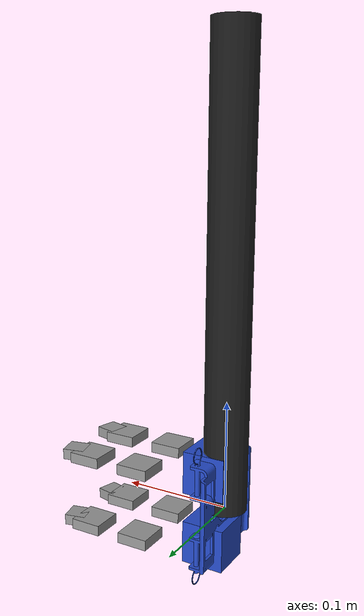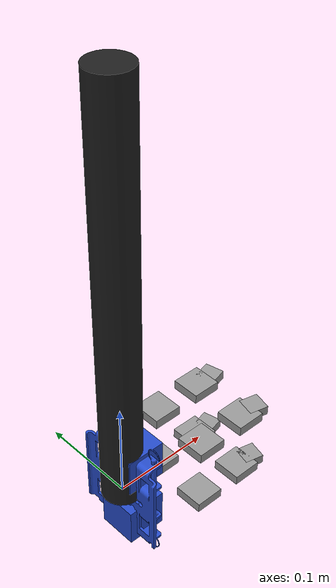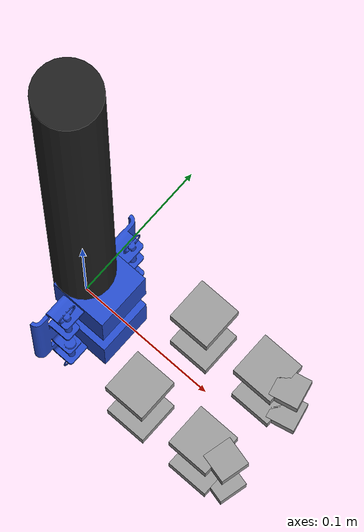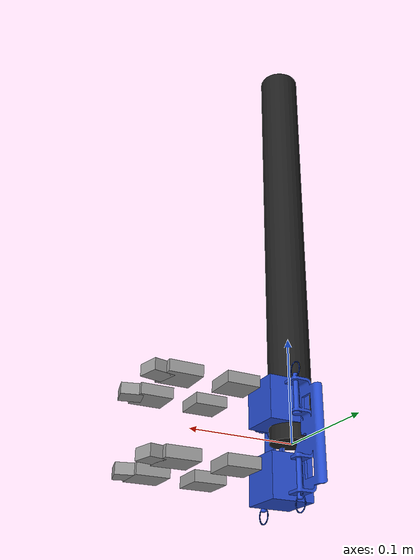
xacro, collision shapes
<?xml version="1.0" encoding="UTF-8"?>
<robot name="ezgripper_single_mount_instantiation" xmlns:xacro="http://ros.org/wiki/xacro">

    <xacro:property name="prefix" value="left" />
    <xacro:property name="ezgripper_offset_x" value="0.00"/>
    <xacro:property name="ezgripper_offset_y" value="0.0"/>
    <xacro:property name="ezgripper_offset_z" value="0.0"/>

    <xacro:include filename="ezgripper_double_with_mount.urdf.xacro" />

    <xacro:ezgripper_double_with_mount prefix="${prefix}" parent_link="base_link">
        <origin xyz="${ezgripper_offset_x} ${ezgripper_offset_y} ${ezgripper_offset_z}" rpy="0 0 0"/>
    </xacro:ezgripper_double_with_mount>

    <link name="world"/>

    <joint name="fixed" type="fixed">
        <parent link="world"/>
        <child link="base_link"/>
    </joint>

    <link name="base_link">
        <visual>
            <geometry>
                <cylinder length="0.42" radius="0.02"/>
            </geometry>
            <origin rpy="0 0 0" xyz="0 0 0.21"/>
            <material name="black"/>
        </visual>
        <collision>
            <geometry>
                <cylinder length="0.42" radius="0.02"/>
            </geometry>
            <origin rpy="0 0 0" xyz="0 0 0.21"/>
        </collision>
    </link>

    <gazebo>
        <plugin filename="libgz_ros2_control-system.so" name="gz_ros2_control::GazeboSimROS2ControlPlugin">
            <parameters>$(find ezgripper_control)/config/controllers_double.yaml</parameters>
        </plugin>
    </gazebo>

</robot>

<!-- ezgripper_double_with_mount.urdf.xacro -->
<robot name="ezgripper_double_with_mount" xmlns:xacro="http://ros.org/wiki/xacro">

  <xacro:macro name="ezgripper_double_with_mount" params="prefix parent_link *origin">

    <xacro:property name="gripper_spacing" value="0.068"/>  <!-- Gripper separation in meters -->
    <xacro:property name="gripper_offset" value="0.01254"/>   <!-- Gripper offset in the positive X direction from the mount in meters (single mount 16mm, double and triple mount 12.54mm-->

    <!-- Include the gripper and mount files -->
    <xacro:include filename="$(find ezgripper_description)/urdf/SAKE_double_mount.urdf.xacro" />
    <xacro:include filename="$(find ezgripper_description)/urdf/ezgripper_single.urdf.xacro" />

    <!-- Instantiate the double mount -->
    <xacro:SAKE_double_mount prefix="${prefix}" parent_link="${parent_link}">
      <xacro:insert_block name="origin"/>
    </xacro:SAKE_double_mount>

    <!-- Instantiate the first ezgripper_single -->
    <xacro:ezgripper_single prefix="${prefix}_gripper1" parent_link="${prefix}_ezgripper_to_mount">
      <origin xyz="${gripper_offset} 0 ${gripper_spacing/2.0}" rpy="0 0 0"/>
    </xacro:ezgripper_single>

    <!-- Instantiate the second ezgripper_single -->
    <xacro:ezgripper_single prefix="${prefix}_gripper2" parent_link="${prefix}_ezgripper_to_mount">
      <origin xyz="${gripper_offset} 0 -${gripper_spacing/2.0}" rpy="0 0 0"/>
    </xacro:ezgripper_single>

  </xacro:macro>

</robot>

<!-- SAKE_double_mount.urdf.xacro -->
<robot name="SAKE_double_mount" xmlns:xacro="http://ros.org/wiki/xacro">

	<xacro:macro name="SAKE_double_mount" params="prefix parent_link *origin">

		<!-- links -->

		<joint name="${prefix}_ezgripper_mount2base" type="fixed">
				<xacro:insert_block name="origin"/>
				<parent link="${parent_link}"/>
				<child link="${prefix}_ezgripper_to_mount"/>
				<axis xyz="0 0 0"/>
				<limit effort="0" lower="-1.57075" upper="0.25" velocity="3.67"/>
		</joint>

		<link name="${prefix}_ezgripper_to_mount">
			<visual>
				<origin rpy="0 0 0" xyz="0.0 0.0 0.0"/>
				<geometry>
					<mesh filename="file://$(find ezgripper_description)/meshes/visual/SAKE_Double_Mount.stl"/>
				</geometry>
				<material name="blue"/>
			</visual>
			<collision>
				<origin rpy="0 0 0" xyz="0.0 0.0 0.0"/>
				<geometry>
					<mesh filename="file://$(find ezgripper_description)/meshes/collision/SAKE_Double_Mount.stl"/>
				</geometry>
			</collision>
			<inertial>
				<mass value=".3"/>
				<inertia ixx="0.01" ixy="0.0" ixz="0.0" iyy="0.01" iyz="0.0" izz="0.01"/>
			</inertial>
		</link>

		<gazebo reference="${prefix}_ezgripper_mount">
			<material>Gazebo/Blue</material>
		</gazebo>

	</xacro:macro>

</robot>

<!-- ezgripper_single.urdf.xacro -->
<robot name="ezgripper_single" xmlns:xacro="http://ros.org/wiki/xacro">

    <!-- Include centralized material definitions (properties only) -->
    <xacro:include filename="$(find ezgripper_description)/urdf/materials.xacro" />

	<xacro:macro name="ezgripper_single" params="prefix parent_link *origin">

		<!-- links -->

		<xacro:ezgripper_palm prefix="${prefix}" parent_link="${parent_link}">
			<xacro:insert_block name="origin"/>
		</xacro:ezgripper_palm>

	</xacro:macro>

	<xacro:macro name="ezgripper_palm" params="prefix parent_link *origin">

        <joint name="${prefix}_ezgripper_to_parent" type="fixed">
   	    <xacro:insert_block name="origin"/>
            <parent link="${parent_link}"/>
            <child link="${prefix}_ezgripper_palm_link"/>
            <axis xyz="0 0 0"/>
            <limit effort="0" lower="-1.57075" upper="0.25" velocity="3.67"/>
        </joint>

		<link name="${prefix}_ezgripper_palm_link">
			<visual>
				<origin xyz="0.0 0 0" rpy="0 0 0"/>
				<geometry>
					<mesh filename="package://ezgripper_description/meshes/visual/SAKE_Palm_IM.stl"/>
				</geometry>
				<material name="ezgripper_blue"/>
			</visual>
			<collision>
				<origin xyz="0.0 0 0" rpy="0 0 0"/>
				<geometry>
					<box size="0.04 0.04 0.04"/>
				</geometry>
			</collision>
			<inertial>
				<mass value=".3"/>
				<inertia ixx="0.01" ixy="0.0" ixz="0.0" iyy="0.01" iyz="0.0" izz="0.01"/>
			</inertial>
		</link>

		<gazebo reference="${prefix}_ezgripper_palm_link">
			<material>Gazebo/Blue</material>
		</gazebo>

		<xacro:ezgripper_finger_L1 prefix="${prefix}" postfix="1" reflect="1" />
		<xacro:ezgripper_finger_L1 prefix="${prefix}" postfix="2" reflect="1" />

		<xacro:ezgripper_finger_L2 prefix="${prefix}" postfix="1" reflect="1" />
		<xacro:ezgripper_finger_L2 prefix="${prefix}" postfix="2" reflect="1" />

		<xacro:ezgripper_finger_pad prefix="${prefix}" postfix="1" reflect="1" />
		<xacro:ezgripper_finger_pad prefix="${prefix}" postfix="2" reflect="1" />

		<xacro:ezgripper_knuckle_palm_L1 prefix="${prefix}" postfix="1" reflectY="1" reflectZ="1" reflectR="-1" mimic_test="false"/>
		<xacro:ezgripper_knuckle_palm_L1 prefix="${prefix}" postfix="2" reflectY="-1" reflectZ="1" reflectR="1" mimic_test="true"/>

		<xacro:ezgripper_knuckle_L1_L2 prefix="${prefix}" postfix="1" reflectY="1" reflectZ="1" reflectR="-1"/>
		<xacro:ezgripper_knuckle_L1_L2 prefix="${prefix}" postfix="2" reflectY="-1" reflectZ="1" reflectR="1"/>

		<xacro:ezgripper_joint_finger_pad prefix="${prefix}" postfix="1" reflectY="1" reflectZ="1" reflectR="1"/>
		<xacro:ezgripper_joint_finger_pad prefix="${prefix}" postfix="2" reflectY="-1" reflectZ="1" reflectR="-1"/>

		<!-- Transmission needs to be removed when mimicked -->
		<xacro:ezgripper_knuckle_palm_trans prefix="${prefix}" postfix="L1_1"/>

		<xacro:gazebo_knuckle_jsp prefix="${prefix}" />

	</xacro:macro>

	<xacro:macro name="ezgripper_finger_L1" params="prefix postfix reflect">

		<link name="${prefix}_ezgripper_finger_L1_${postfix}">
			<visual>
				<origin xyz="0 0 0" rpy="0 0 0"/>
				<geometry>
					<mesh filename="package://ezgripper_description/meshes/visual/SAKE_Finger_L1_IM.stl"/>
				</geometry>
				<material name="ezgripper_grey"/>
			</visual>
			<collision>
				<origin xyz="0 0 0" rpy="0 0 0"/>
				<geometry>
					<box size="0.03 0.01 0.03"/>
				</geometry>
			</collision>
			<inertial>
				<mass value=".025"/>
				<inertia ixx="0.01" ixy="0.0" ixz="0.0" iyy="0.01" iyz="0.0" izz="0.01"/>
			</inertial>
		</link>

		<gazebo reference="${prefix}_ezgripper_finger_L1_${postfix}">
			<material>Gazebo/Grey</material>
		</gazebo>

	</xacro:macro>

	<xacro:macro name="ezgripper_finger_L2" params="prefix postfix reflect">

		<link name="${prefix}_ezgripper_finger_L2_${postfix}">
			<visual>
				<origin xyz="0 0 0" rpy="0 0 0"/>
				<geometry>
					<mesh filename="package://ezgripper_description/meshes/visual/SAKE_Finger_L2_IM.stl"/>
				</geometry>
				<material name="ezgripper_grey"/>
			</visual>
			<collision>
				<origin xyz="0 0 0" rpy="0 0 0"/>
				<geometry>
					<box size="0.03 0.01 0.03"/>
				</geometry>
			</collision>
			<inertial>
				<mass value=".025"/>
				<inertia ixx="0.01" ixy="0.0" ixz="0.0" iyy="0.01" iyz="0.0" izz="0.01"/>
			</inertial>
		</link>

		<gazebo reference="${prefix}_ezgripper_finger_L2_${postfix}">
			<material>Gazebo/Grey</material>
		</gazebo>

	</xacro:macro>

	<xacro:macro name="ezgripper_finger_pad" params="prefix postfix reflect">

		<link name="${prefix}_ezgripper_finger_pad_${postfix}">
			<visual>
				<origin xyz="0 0 0" rpy="0 0 0"/>
				<geometry>
					<mesh filename="package://ezgripper_description/meshes/visual/SAKE_Finger_Pad_IM.stl"/>
				</geometry>
				<material name="ezgripper_grey"/>
			</visual>
			<collision>
				<origin xyz="0 0 0" rpy="0 0 0"/>
				<geometry>
					<box size="0.02 0.01 0.02"/>
				</geometry>
			</collision>
			<inertial>
				<mass value=".025"/>
				<inertia ixx="0.01" ixy="0.0" ixz="0.0" iyy="0.01" iyz="0.0" izz="0.01"/>
			</inertial>
		</link>

		<gazebo reference="${prefix}_ezgripper_finger_pad_${postfix}">
			<material>Gazebo/Grey</material>
		</gazebo>

	</xacro:macro>

	<!-- Joints -->

	<xacro:macro name="ezgripper_knuckle_palm_L1" params="prefix postfix reflectY reflectZ reflectR mimic_test">
		<joint name="${prefix}_ezgripper_knuckle_palm_L1_${postfix}" type="revolute">
			<parent link="${prefix}_ezgripper_palm_link"/>
			<child link="${prefix}_ezgripper_finger_L1_${postfix}"/>
			<origin xyz="0.0595 ${reflectY*0.03} 0" rpy="${1.5708 * reflectR} 0 0"/>
			<axis xyz="0 1 0"/>
			<limit lower="-1.57075" upper="0.27" effort="1" velocity="3.67"/>
			<xacro:if value="${mimic_test}">
					<mimic joint="${prefix}_ezgripper_knuckle_palm_L1_1"/>
			</xacro:if>
		</joint>
	</xacro:macro>

	<xacro:macro name="ezgripper_knuckle_L1_L2" params="prefix postfix reflectY reflectZ reflectR">
		<joint name="${prefix}_ezgripper_knuckle_L1_L2_${postfix}" type="fixed">
			<parent link="${prefix}_ezgripper_finger_L1_${postfix}"/>
			<child link="${prefix}_ezgripper_finger_L2_${postfix}"/>
			<origin xyz="0.052 0 0" rpy="0 0 0"/>
			<axis xyz="0 1 0"/>
		</joint>
	</xacro:macro>

	<xacro:macro name="ezgripper_joint_finger_pad" params="prefix postfix reflectY reflectZ reflectR">
		<joint name="${prefix}_ezgripper_joint_finger_pad${postfix}" type="fixed">
			<parent link="${prefix}_ezgripper_finger_L2_${postfix}"/>
			<child link="${prefix}_ezgripper_finger_pad_${postfix}"/>
			<origin xyz="0.01849 0 0" rpy="0 -0.2318 0"/>
			<axis xyz="0 1 0"/>
		</joint>
	</xacro:macro>

	<!-- Transmissions for Gazebo -->

	<xacro:macro name="ezgripper_knuckle_palm_trans" params="prefix postfix">
		<transmission name="${prefix}_ezgripper_knuckle_palm_trans_${postfix}">
				<type>transmission_interface/SimpleTransmission</type>
				<joint name="${prefix}_ezgripper_knuckle_palm_${postfix}">
					<hardwareInterface>hardware_interface/PositionJointInterface</hardwareInterface>
				</joint>
				<actuator name="${prefix}_ezgripper_knuckle_palm_motor${postfix}">
					<mechanicalReduction>1</mechanicalReduction>
					<hardwareInterface>hardware_interface/PositionJointInterface</hardwareInterface>
				</actuator>
		</transmission>
	</xacro:macro>

	<xacro:macro name="gazebo_knuckle_jsp" params="prefix">
		<gazebo>
			<plugin name="joint_state_publisher" filename="libgazebo_ros_joint_state_publisher.so">
				<joint_name>${prefix}_ezgripper_knuckle_palm_L1_1</joint_name>
				<update_rate>100.0</update_rate>
			</plugin>
		</gazebo>
	</xacro:macro>

  <ros2_control name="GazeboSystem" type="system">

    <hardware>
      <plugin>gazebo_ros2_control/GazeboSystem</plugin>
    </hardware>

		<joint name="${prefix}_ezgripper_knuckle_palm_L1_1">

      <command_interface name="position"/>

      <state_interface name="position"/>
      <state_interface name="velocity"/>
      <state_interface name="effort"/>
    </joint>

    <joint name="${prefix}_ezgripper_knuckle_palm_L1_2">

			<param name="mimic">${prefix}_ezgripper_knuckle_palm_L1_1</param>
			<param name="multiplier">1</param>

			<command_interface name="position"/>

			<state_interface name="position"/>
      <state_interface name="velocity"/>
      <state_interface name="effort"/>
    </joint>

  </ros2_control>

	<gazebo>

		<plugin name="gazebo_ros2_control" filename="libgazebo_ros2_control.so">

			<ros>
				<namespace>/ezgripper_single</namespace>
			</ros>

			<robot_param>robot_description</robot_param>
      <robot_param_node>/robot_state_publisher</robot_param_node>
			<robot_sim_type>gazebo_ros2_control/GazeboSystem</robot_sim_type>
			<parameters>$(find ezgripper_control)/config/controllers_single.yaml</parameters>
		</plugin>

	</gazebo>

</robot>
